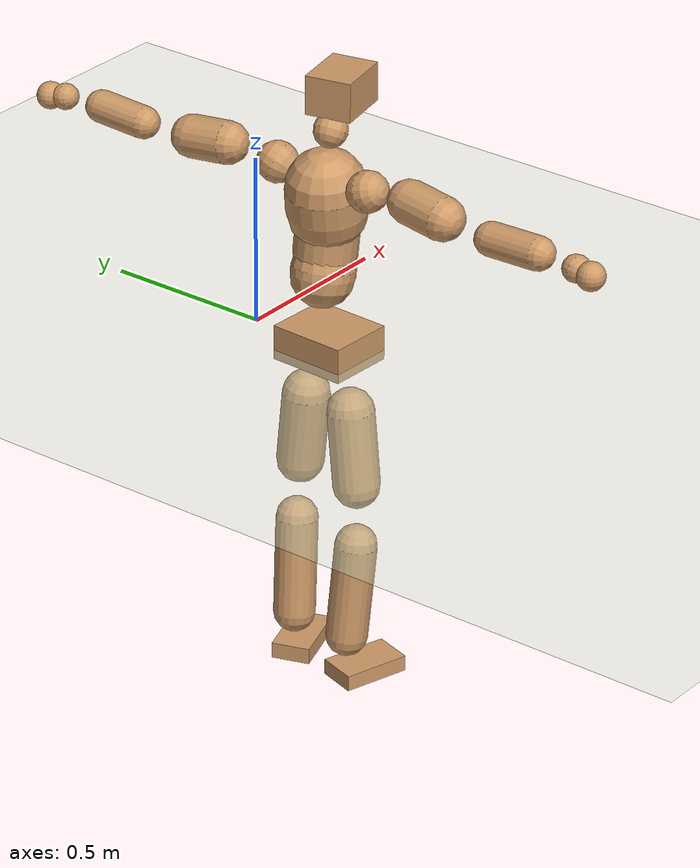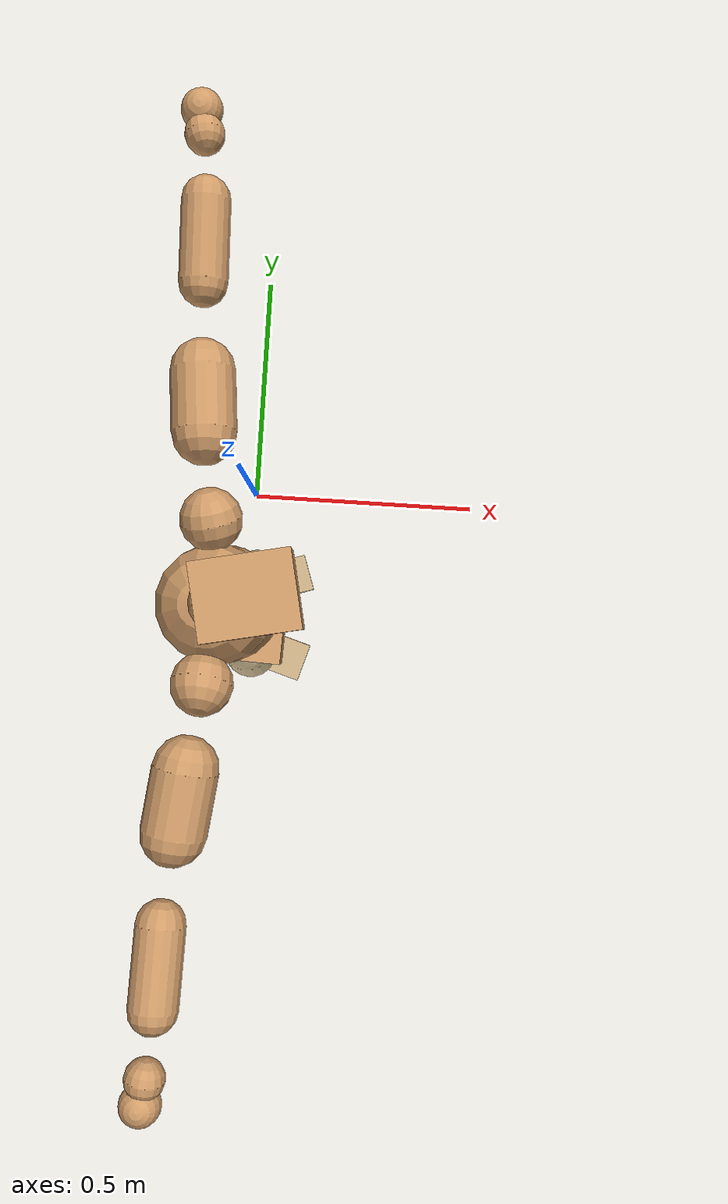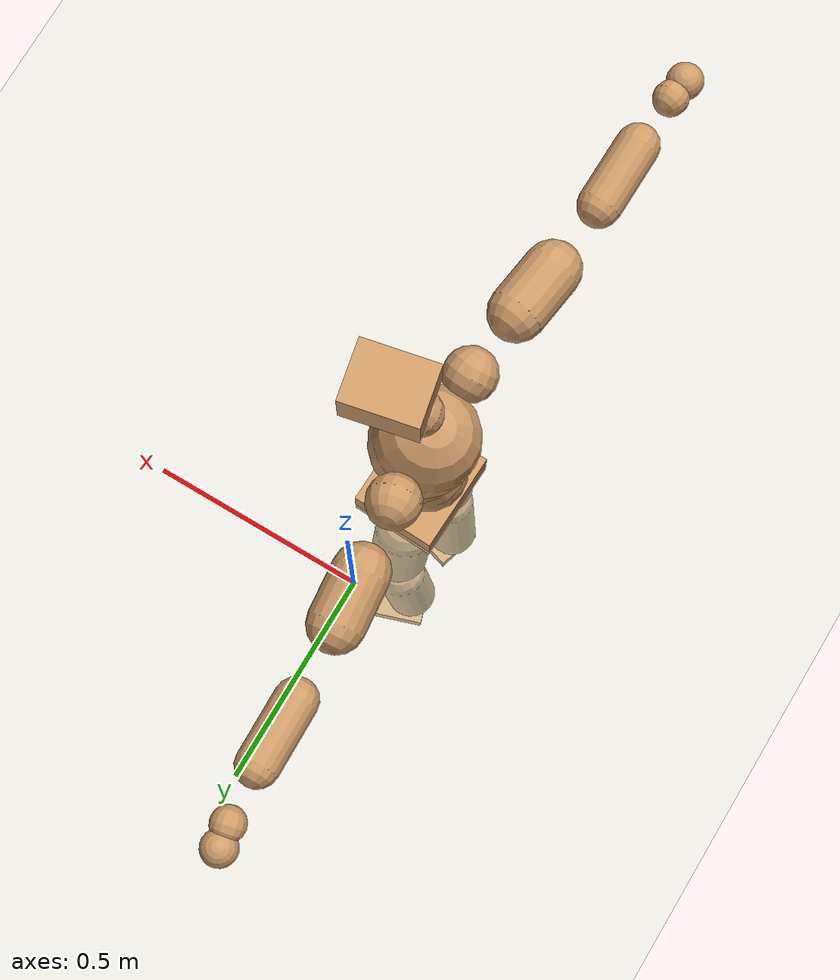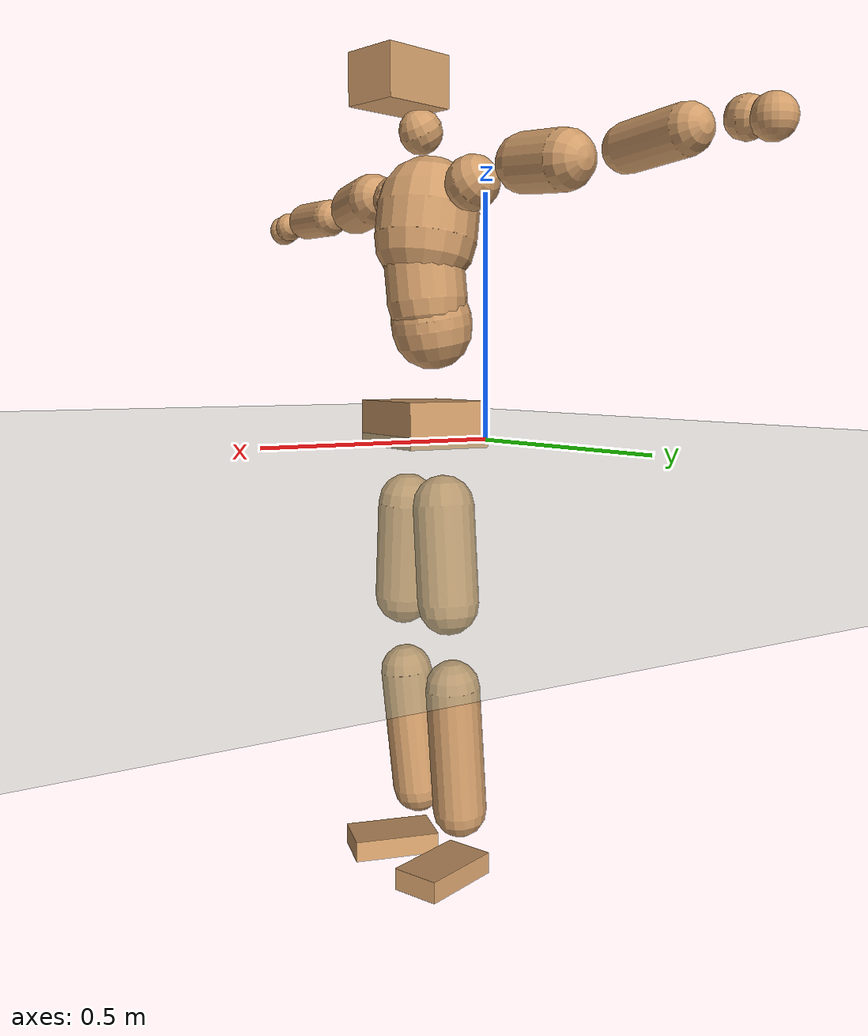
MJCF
<mujoco model="humanoid">
  <compiler coordinate="local" angle="radian"/>
  <default>
    <joint damping="0.0" armature="0.01" stiffness="0.0" limited="true"/>
    <geom conaffinity="1" condim="3" contype="7" margin="0.001" rgba="0.8 0.6 .4 1"/>
  </default>
  <asset>
    <texture type="skybox" builtin="gradient" rgb1=".4 .5 .6" rgb2="0 0 0" width="100" height="100"/>
    <texture builtin="flat" height="1278" mark="cross" markrgb="1 1 1" name="texgeom" random="0.01" rgb1="0.8 0.6 0.4" rgb2="0.8 0.6 0.4" type="cube" width="127"/>
    <texture builtin="checker" height="100" name="texplane" rgb1="0 0 0" rgb2="0.8 0.8 0.8" type="2d" width="100"/>
    <material name="MatPlane" reflectance="0.5" shininess="1" specular="1" texrepeat="60 60" texture="texplane"/>
    <material name="geom" texture="texgeom" texuniform="true"/>
  </asset>
  <worldbody>
    <light cutoff="100" diffuse="1 1 1" dir="-0 0 -1.3" directional="true" exponent="1" pos="0 0 1.3" specular=".1 .1 .1"/>
    <geom conaffinity="1" condim="3" name="floor" pos="0 0 0" rgba="0.8 0.9 0.8 1" size="100 100 .2" type="plane" material="MatPlane"/>
    <body name="Pelvis" pos="-0.0015 -0.269 0.0299">
      <freejoint name="Pelvis"/>
      <geom type="box" contype="1" conaffinity="1" density="5359.375528" pos="-0.0127 0.0005 -0.0088" size="0.0988 0.117 0.0515" quat="0.9998 0.0000 0.0000 -0.0206" name="Pelvis"/>
      <body name="L_Hip" pos="-0.0179 0.0662 -0.0914">
        <joint name="L_Hip_x" type="hinge" pos="0 0 0" axis="1 0 0" stiffness="1600" damping="160" armature="0.02" range="-180.0000 180.0000"/>
        <joint name="L_Hip_y" type="hinge" pos="0 0 0" axis="0 1 0" stiffness="1600" damping="160" armature="0.02" range="-180.0000 180.0000"/>
        <joint name="L_Hip_z" type="hinge" pos="0 0 0" axis="0 0 1" stiffness="1600" damping="160" armature="0.02" range="-180.0000 180.0000"/>
        <geom type="capsule" contype="1" conaffinity="1" density="2040.816327" size="0.0686" fromto="0.0013 0.0106 -0.0980 0.0042 0.0345 -0.3178" name="L_Hip"/>
        <body name="L_Knee" pos="0.0055 0.0451 -0.4158">
          <joint name="L_Knee_x" type="hinge" pos="0 0 0" axis="1 0 0" stiffness="1600" damping="160" armature="0.02" range="-180.0000 180.0000"/>
          <joint name="L_Knee_y" type="hinge" pos="0 0 0" axis="0 1 0" stiffness="1600" damping="160" armature="0.02" range="-180.0000 180.0000"/>
          <joint name="L_Knee_z" type="hinge" pos="0 0 0" axis="0 0 1" stiffness="1600" damping="160" armature="0.02" range="-180.0000 180.0000"/>
          <geom type="capsule" contype="1" conaffinity="1" density="1234.567901" size="0.0613" fromto="-0.0082 -0.0034 -0.0909 -0.0348 -0.0144 -0.3840" name="L_Knee"/>
          <body name="L_Ankle" pos="-0.043 -0.0178 -0.4749">
            <joint name="L_Ankle_x" type="hinge" pos="0 0 0" axis="1 0 0" stiffness="1600" damping="160" armature="0.02" range="-180.0000 180.0000"/>
            <joint name="L_Ankle_y" type="hinge" pos="0 0 0" axis="0 1 0" stiffness="1600" damping="160" armature="0.02" range="-180.0000 180.0000"/>
            <joint name="L_Ankle_z" type="hinge" pos="0 0 0" axis="0 0 1" stiffness="1600" damping="160" armature="0.02" range="-180.0000 180.0000"/>
            <geom type="box" contype="1" conaffinity="1" density="999.999988" pos="0.0667 0.0224 -0.0336" size="0.0983 0.0567 0.0242" quat="0.9869 0.0000 0.0000 0.1615" name="L_Ankle"/>
            <body name="L_Toe" pos="0.1334 0.0449 -0.0672">
              <joint name="L_Toe_x" type="hinge" pos="0 0 0" axis="1 0 0" stiffness="1000" damping="100" armature="0.02" range="-180.0000 180.0000"/>
              <joint name="L_Toe_y" type="hinge" pos="0 0 0" axis="0 1 0" stiffness="1000" damping="100" armature="0.02" range="-180.0000 180.0000"/>
              <joint name="L_Toe_z" type="hinge" pos="0 0 0" axis="0 0 1" stiffness="1000" damping="100" armature="0.02" range="-180.0000 180.0000"/>
              <geom type="box" contype="1" conaffinity="1" density="8368894.317569" pos="0.0000 0.0000 0.0337" size="0.0011 0.0027 0.0012" quat="0.9861 0.0000 0.0000 0.1659" name="L_Toe"/>
            </body>
          </body>
        </body>
      </body>
      <body name="R_Hip" pos="-0.0135 -0.0683 -0.1002">
        <joint name="R_Hip_x" type="hinge" pos="0 0 0" axis="1 0 0" stiffness="1600" damping="160" armature="0.02" range="-180.0000 180.0000"/>
        <joint name="R_Hip_y" type="hinge" pos="0 0 0" axis="0 1 0" stiffness="1600" damping="160" armature="0.02" range="-180.0000 180.0000"/>
        <joint name="R_Hip_z" type="hinge" pos="0 0 0" axis="0 0 1" stiffness="1600" damping="160" armature="0.02" range="-180.0000 180.0000"/>
        <geom type="capsule" contype="1" conaffinity="1" density="2040.816327" size="0.0682" fromto="-0.0021 -0.0111 -0.0975 -0.0070 -0.0366 -0.3204" name="R_Hip"/>
        <body name="R_Knee" pos="-0.0091 -0.0477 -0.4179">
          <joint name="R_Knee_x" type="hinge" pos="0 0 0" axis="1 0 0" stiffness="1600" damping="160" armature="0.02" range="-180.0000 180.0000"/>
          <joint name="R_Knee_y" type="hinge" pos="0 0 0" axis="0 1 0" stiffness="1600" damping="160" armature="0.02" range="-180.0000 180.0000"/>
          <joint name="R_Knee_z" type="hinge" pos="0 0 0" axis="0 0 1" stiffness="1600" damping="160" armature="0.02" range="-180.0000 180.0000"/>
          <geom type="capsule" contype="1" conaffinity="1" density="1234.567901" size="0.061" fromto="-0.0076 0.0042 -0.0906 -0.0318 0.0177 -0.3786" name="R_Knee"/>
          <body name="R_Ankle" pos="-0.0394 0.0219 -0.4692">
            <joint name="R_Ankle_x" type="hinge" pos="0 0 0" axis="1 0 0" stiffness="1600" damping="160" armature="0.02" range="-180.0000 180.0000"/>
            <joint name="R_Ankle_y" type="hinge" pos="0 0 0" axis="0 1 0" stiffness="1600" damping="160" armature="0.02" range="-180.0000 180.0000"/>
            <joint name="R_Ankle_z" type="hinge" pos="0 0 0" axis="0 0 1" stiffness="1600" damping="160" armature="0.02" range="-180.0000 180.0000"/>
            <geom type="box" contype="1" conaffinity="1" density="999.999949" pos="0.0716 -0.0217 -0.0346" size="0.1002 0.059 0.0236" quat="0.9892 0.0000 0.0000 -0.1468" name="R_Ankle"/>
            <body name="R_Toe" pos="0.1433 -0.0435 -0.0692">
              <joint name="R_Toe_x" type="hinge" pos="0 0 0" axis="1 0 0" stiffness="1000" damping="100" armature="0.02" range="-180.0000 180.0000"/>
              <joint name="R_Toe_y" type="hinge" pos="0 0 0" axis="0 1 0" stiffness="1000" damping="100" armature="0.02" range="-180.0000 180.0000"/>
              <joint name="R_Toe_z" type="hinge" pos="0 0 0" axis="0 0 1" stiffness="1000" damping="100" armature="0.02" range="-180.0000 180.0000"/>
              <geom type="box" contype="1" conaffinity="1" density="7975412.095867" pos="0.0000 0.0000 0.0360" size="0.0012 0.0028 0.0012" quat="0.9903 0.0000 0.0000 -0.1386" name="R_Toe"/>
            </body>
          </body>
        </body>
      </body>
      <body name="Torso" pos="-0.0448 0.0053 0.1385">
        <joint name="Torso_x" type="hinge" pos="0 0 0" axis="1 0 0" stiffness="2000" damping="200" armature="0.02" range="-180.0000 180.0000"/>
        <joint name="Torso_y" type="hinge" pos="0 0 0" axis="0 1 0" stiffness="2000" damping="200" armature="0.02" range="-180.0000 180.0000"/>
        <joint name="Torso_z" type="hinge" pos="0 0 0" axis="0 0 1" stiffness="2000" damping="200" armature="0.02" range="-180.0000 180.0000"/>
        <geom type="capsule" contype="1" conaffinity="1" density="2040.816327" size="0.0915" fromto="0.0182 0.0029 0.0896 0.0132 0.0021 0.0651" name="Torso"/>
        <body name="Spine" pos="0.0314 0.005 0.1547">
          <joint name="Spine_x" type="hinge" pos="0 0 0" axis="1 0 0" stiffness="2000" damping="200" armature="0.02" range="-180.0000 180.0000"/>
          <joint name="Spine_y" type="hinge" pos="0 0 0" axis="0 1 0" stiffness="2000" damping="200" armature="0.02" range="-180.0000 180.0000"/>
          <joint name="Spine_z" type="hinge" pos="0 0 0" axis="0 0 1" stiffness="2000" damping="200" armature="0.02" range="-180.0000 180.0000"/>
          <geom type="capsule" contype="1" conaffinity="1" density="2040.816327" size="0.0907" fromto="0.0064 -0.0049 0.0903 -0.0020 0.0015 -0.0278" name="Spine"/>
          <body name="Chest" pos="0.0045 -0.0034 0.0625">
            <joint name="Chest_x" type="hinge" pos="0 0 0" axis="1 0 0" stiffness="2000" damping="200" armature="0.02" range="-180.0000 180.0000"/>
            <joint name="Chest_y" type="hinge" pos="0 0 0" axis="0 1 0" stiffness="2000" damping="200" armature="0.02" range="-180.0000 180.0000"/>
            <joint name="Chest_z" type="hinge" pos="0 0 0" axis="0 0 1" stiffness="2000" damping="200" armature="0.02" range="-180.0000 180.0000"/>
            <geom type="capsule" contype="1" conaffinity="1" density="2040.816327" size="0.1153" fromto="-0.0167 -0.0055 0.1140 -0.0067 -0.0022 0.0458" name="Chest"/>
            <body name="Neck" pos="-0.0287 -0.0124 0.2312">
              <joint name="Neck_x" type="hinge" pos="0 0 0" axis="1 0 0" stiffness="1000" damping="100" armature="0.02" range="-180.0000 180.0000"/>
              <joint name="Neck_y" type="hinge" pos="0 0 0" axis="0 1 0" stiffness="1000" damping="100" armature="0.02" range="-180.0000 180.0000"/>
              <joint name="Neck_z" type="hinge" pos="0 0 0" axis="0 0 1" stiffness="1000" damping="100" armature="0.02" range="-180.0000 180.0000"/>
              <geom type="capsule" contype="1" conaffinity="1" density="1000" size="0.0492" fromto="0.0301 0.0055 0.0480 0.0312 0.0057 0.0497" name="Neck"/>
              <body name="Head" pos="0.0613 0.0113 0.0977">
                <joint name="Head_x" type="hinge" pos="0 0 0" axis="1 0 0" stiffness="1000" damping="100" armature="0.02" range="-180.0000 180.0000"/>
                <joint name="Head_y" type="hinge" pos="0 0 0" axis="0 1 0" stiffness="1000" damping="100" armature="0.02" range="-180.0000 180.0000"/>
                <joint name="Head_z" type="hinge" pos="0 0 0" axis="0 0 1" stiffness="1000" damping="100" armature="0.02" range="-180.0000 180.0000"/>
                <geom type="box" contype="1" conaffinity="1" density="2250.000178" pos="0.0317 0.0066 0.0499" size="0.0857 0.0679 0.0572" quat="0.9947 0.0000 0.0000 0.1031" name="Head"/>
              </body>
            </body>
            <body name="L_Thorax" pos="-0.0185 0.0832 0.1255">
              <joint name="L_Thorax_x" type="hinge" pos="0 0 0" axis="1 0 0" stiffness="1000" damping="100" armature="0.02" range="-180.0000 180.0000"/>
              <joint name="L_Thorax_y" type="hinge" pos="0 0 0" axis="0 1 0" stiffness="1000" damping="100" armature="0.02" range="-180.0000 180.0000"/>
              <joint name="L_Thorax_z" type="hinge" pos="0 0 0" axis="0 0 1" stiffness="1000" damping="100" armature="0.02" range="-180.0000 180.0000"/>
              <geom type="capsule" contype="1" conaffinity="1" density="1000" size="0.0596" fromto="-0.0120 0.0668 0.0266 -0.0124 0.0686 0.0274" name="L_Thorax"/>
              <body name="L_Shoulder" pos="-0.0244 0.1354 0.054">
                <joint name="L_Shoulder_x" type="hinge" pos="0 0 0" axis="1 0 0" stiffness="1000" damping="100" armature="0.02" range="-720.0000 720.0000"/>
                <joint name="L_Shoulder_y" type="hinge" pos="0 0 0" axis="0 1 0" stiffness="1000" damping="100" armature="0.02" range="-720.0000 720.0000"/>
                <joint name="L_Shoulder_z" type="hinge" pos="0 0 0" axis="0 0 1" stiffness="1000" damping="100" armature="0.02" range="-720.0000 720.0000"/>
                <geom type="capsule" contype="1" conaffinity="1" density="1000" size="0.0618" fromto="-0.0087 0.0911 -0.0071 -0.0197 0.2072 -0.0161" name="L_Shoulder"/>
                <body name="L_Elbow" pos="-0.0284 0.2984 -0.0231">
                  <joint name="L_Elbow_x" type="hinge" pos="0 0 0" axis="1 0 0" stiffness="1000" damping="100" armature="0.02" range="-720.0000 720.0000"/>
                  <joint name="L_Elbow_y" type="hinge" pos="0 0 0" axis="0 1 0" stiffness="1000" damping="100" armature="0.02" range="-720.0000 720.0000"/>
                  <joint name="L_Elbow_z" type="hinge" pos="0 0 0" axis="0 0 1" stiffness="1000" damping="100" armature="0.02" range="-720.0000 720.0000"/>
                  <geom type="capsule" contype="1" conaffinity="1" density="1000" size="0.047" fromto="-0.0017 0.0768 0.0046 -0.0049 0.2273 0.0136" name="L_Elbow"/>
                  <body name="L_Wrist" pos="-0.0066 0.3041 0.0182">
                    <joint name="L_Wrist_x" type="hinge" pos="0 0 0" axis="1 0 0" stiffness="600" damping="60" armature="0.02" range="-180.0000 180.0000"/>
                    <joint name="L_Wrist_y" type="hinge" pos="0 0 0" axis="0 1 0" stiffness="600" damping="60" armature="0.02" range="-180.0000 180.0000"/>
                    <joint name="L_Wrist_z" type="hinge" pos="0 0 0" axis="0 0 1" stiffness="600" damping="60" armature="0.02" range="-180.0000 180.0000"/>
                    <geom type="capsule" contype="1" conaffinity="1" density="1000" size="0.0381" fromto="-0.0087 0.0474 -0.0058 -0.0091 0.0494 -0.0061" name="L_Wrist"/>
                    <body name="L_Hand" pos="-0.0178 0.0968 -0.0119">
                      <joint name="L_Hand_x" type="hinge" pos="0 0 0" axis="1 0 0" stiffness="600" damping="60" armature="0.02" range="-180.0000 180.0000"/>
                      <joint name="L_Hand_y" type="hinge" pos="0 0 0" axis="0 1 0" stiffness="600" damping="60" armature="0.02" range="-180.0000 180.0000"/>
                      <joint name="L_Hand_z" type="hinge" pos="0 0 0" axis="0 0 1" stiffness="600" damping="60" armature="0.02" range="-180.0000 180.0000"/>
                      <geom type="sphere" contype="1" conaffinity="1" density="1000" size="0.0398" pos="0.0000 0.0000 0.0000" name="L_Hand"/>
                    </body>
                  </body>
                </body>
              </body>
            </body>
            <body name="R_Thorax" pos="-0.0232 -0.0941 0.1226">
              <joint name="R_Thorax_x" type="hinge" pos="0 0 0" axis="1 0 0" stiffness="1000" damping="100" armature="0.02" range="-180.0000 180.0000"/>
              <joint name="R_Thorax_y" type="hinge" pos="0 0 0" axis="0 1 0" stiffness="1000" damping="100" armature="0.02" range="-180.0000 180.0000"/>
              <joint name="R_Thorax_z" type="hinge" pos="0 0 0" axis="0 0 1" stiffness="1000" damping="100" armature="0.02" range="-180.0000 180.0000"/>
              <geom type="capsule" contype="1" conaffinity="1" density="1000" size="0.0596" fromto="-0.0054 -0.0625 0.0275 -0.0055 -0.0644 0.0283" name="R_Thorax"/>
              <body name="R_Shoulder" pos="-0.0109 -0.1269 0.0558">
                <joint name="R_Shoulder_x" type="hinge" pos="0 0 0" axis="1 0 0" stiffness="1000" damping="100" armature="0.02" range="-720.0000 720.0000"/>
                <joint name="R_Shoulder_y" type="hinge" pos="0 0 0" axis="0 1 0" stiffness="1000" damping="100" armature="0.02" range="-720.0000 720.0000"/>
                <joint name="R_Shoulder_z" type="hinge" pos="0 0 0" axis="0 0 1" stiffness="1000" damping="100" armature="0.02" range="-720.0000 720.0000"/>
                <geom type="capsule" contype="1" conaffinity="1" density="1000" size="0.0629" fromto="-0.0117 -0.0919 -0.0063 -0.0272 -0.2131 -0.0146" name="R_Shoulder"/>
                <body name="R_Elbow" pos="-0.0389 -0.305 -0.0209">
                  <joint name="R_Elbow_x" type="hinge" pos="0 0 0" axis="1 0 0" stiffness="1000" damping="100" armature="0.02" range="-720.0000 720.0000"/>
                  <joint name="R_Elbow_y" type="hinge" pos="0 0 0" axis="0 1 0" stiffness="1000" damping="100" armature="0.02" range="-720.0000 720.0000"/>
                  <joint name="R_Elbow_z" type="hinge" pos="0 0 0" axis="0 0 1" stiffness="1000" damping="100" armature="0.02" range="-720.0000 720.0000"/>
                  <geom type="capsule" contype="1" conaffinity="1" density="1000" size="0.048" fromto="-0.0017 -0.0779 0.0028 -0.0051 -0.2316 0.0083" name="R_Elbow"/>
                  <body name="R_Wrist" pos="-0.0068 -0.3096 0.011">
                    <joint name="R_Wrist_x" type="hinge" pos="0 0 0" axis="1 0 0" stiffness="600" damping="60" armature="0.02" range="-180.0000 180.0000"/>
                    <joint name="R_Wrist_y" type="hinge" pos="0 0 0" axis="0 1 0" stiffness="600" damping="60" armature="0.02" range="-180.0000 180.0000"/>
                    <joint name="R_Wrist_z" type="hinge" pos="0 0 0" axis="0 0 1" stiffness="600" damping="60" armature="0.02" range="-180.0000 180.0000"/>
                    <geom type="capsule" contype="1" conaffinity="1" density="1000" size="0.0391" fromto="-0.0057 -0.0489 -0.0049 -0.0059 -0.0508 -0.0051" name="R_Wrist"/>
                    <body name="R_Hand" pos="-0.0117 -0.0997 -0.01">
                      <joint name="R_Hand_x" type="hinge" pos="0 0 0" axis="1 0 0" stiffness="600" damping="60" armature="0.02" range="-180.0000 180.0000"/>
                      <joint name="R_Hand_y" type="hinge" pos="0 0 0" axis="0 1 0" stiffness="600" damping="60" armature="0.02" range="-180.0000 180.0000"/>
                      <joint name="R_Hand_z" type="hinge" pos="0 0 0" axis="0 0 1" stiffness="600" damping="60" armature="0.02" range="-180.0000 180.0000"/>
                      <geom type="sphere" contype="1" conaffinity="1" density="1000" size="0.0405" pos="0.0000 0.0000 0.0000" name="R_Hand"/>
                    </body>
                  </body>
                </body>
              </body>
            </body>
          </body>
        </body>
      </body>
    </body>
  </worldbody>
  <actuator>
    <motor name="L_Hip_x" joint="L_Hip_x" gear="500"/>
    <motor name="L_Hip_y" joint="L_Hip_y" gear="500"/>
    <motor name="L_Hip_z" joint="L_Hip_z" gear="500"/>
    <motor name="L_Knee_x" joint="L_Knee_x" gear="500"/>
    <motor name="L_Knee_y" joint="L_Knee_y" gear="500"/>
    <motor name="L_Knee_z" joint="L_Knee_z" gear="500"/>
    <motor name="L_Ankle_x" joint="L_Ankle_x" gear="500"/>
    <motor name="L_Ankle_y" joint="L_Ankle_y" gear="500"/>
    <motor name="L_Ankle_z" joint="L_Ankle_z" gear="500"/>
    <motor name="L_Toe_x" joint="L_Toe_x" gear="500"/>
    <motor name="L_Toe_y" joint="L_Toe_y" gear="500"/>
    <motor name="L_Toe_z" joint="L_Toe_z" gear="500"/>
    <motor name="R_Hip_x" joint="R_Hip_x" gear="500"/>
    <motor name="R_Hip_y" joint="R_Hip_y" gear="500"/>
    <motor name="R_Hip_z" joint="R_Hip_z" gear="500"/>
    <motor name="R_Knee_x" joint="R_Knee_x" gear="500"/>
    <motor name="R_Knee_y" joint="R_Knee_y" gear="500"/>
    <motor name="R_Knee_z" joint="R_Knee_z" gear="500"/>
    <motor name="R_Ankle_x" joint="R_Ankle_x" gear="500"/>
    <motor name="R_Ankle_y" joint="R_Ankle_y" gear="500"/>
    <motor name="R_Ankle_z" joint="R_Ankle_z" gear="500"/>
    <motor name="R_Toe_x" joint="R_Toe_x" gear="500"/>
    <motor name="R_Toe_y" joint="R_Toe_y" gear="500"/>
    <motor name="R_Toe_z" joint="R_Toe_z" gear="500"/>
    <motor name="Torso_x" joint="Torso_x" gear="500"/>
    <motor name="Torso_y" joint="Torso_y" gear="500"/>
    <motor name="Torso_z" joint="Torso_z" gear="500"/>
    <motor name="Spine_x" joint="Spine_x" gear="500"/>
    <motor name="Spine_y" joint="Spine_y" gear="500"/>
    <motor name="Spine_z" joint="Spine_z" gear="500"/>
    <motor name="Chest_x" joint="Chest_x" gear="500"/>
    <motor name="Chest_y" joint="Chest_y" gear="500"/>
    <motor name="Chest_z" joint="Chest_z" gear="500"/>
    <motor name="Neck_x" joint="Neck_x" gear="500"/>
    <motor name="Neck_y" joint="Neck_y" gear="500"/>
    <motor name="Neck_z" joint="Neck_z" gear="500"/>
    <motor name="Head_x" joint="Head_x" gear="500"/>
    <motor name="Head_y" joint="Head_y" gear="500"/>
    <motor name="Head_z" joint="Head_z" gear="500"/>
    <motor name="L_Thorax_x" joint="L_Thorax_x" gear="500"/>
    <motor name="L_Thorax_y" joint="L_Thorax_y" gear="500"/>
    <motor name="L_Thorax_z" joint="L_Thorax_z" gear="500"/>
    <motor name="L_Shoulder_x" joint="L_Shoulder_x" gear="500"/>
    <motor name="L_Shoulder_y" joint="L_Shoulder_y" gear="500"/>
    <motor name="L_Shoulder_z" joint="L_Shoulder_z" gear="500"/>
    <motor name="L_Elbow_x" joint="L_Elbow_x" gear="500"/>
    <motor name="L_Elbow_y" joint="L_Elbow_y" gear="500"/>
    <motor name="L_Elbow_z" joint="L_Elbow_z" gear="500"/>
    <motor name="L_Wrist_x" joint="L_Wrist_x" gear="500"/>
    <motor name="L_Wrist_y" joint="L_Wrist_y" gear="500"/>
    <motor name="L_Wrist_z" joint="L_Wrist_z" gear="500"/>
    <motor name="L_Hand_x" joint="L_Hand_x" gear="500"/>
    <motor name="L_Hand_y" joint="L_Hand_y" gear="500"/>
    <motor name="L_Hand_z" joint="L_Hand_z" gear="500"/>
    <motor name="R_Thorax_x" joint="R_Thorax_x" gear="500"/>
    <motor name="R_Thorax_y" joint="R_Thorax_y" gear="500"/>
    <motor name="R_Thorax_z" joint="R_Thorax_z" gear="500"/>
    <motor name="R_Shoulder_x" joint="R_Shoulder_x" gear="500"/>
    <motor name="R_Shoulder_y" joint="R_Shoulder_y" gear="500"/>
    <motor name="R_Shoulder_z" joint="R_Shoulder_z" gear="500"/>
    <motor name="R_Elbow_x" joint="R_Elbow_x" gear="500"/>
    <motor name="R_Elbow_y" joint="R_Elbow_y" gear="500"/>
    <motor name="R_Elbow_z" joint="R_Elbow_z" gear="500"/>
    <motor name="R_Wrist_x" joint="R_Wrist_x" gear="500"/>
    <motor name="R_Wrist_y" joint="R_Wrist_y" gear="500"/>
    <motor name="R_Wrist_z" joint="R_Wrist_z" gear="500"/>
    <motor name="R_Hand_x" joint="R_Hand_x" gear="500"/>
    <motor name="R_Hand_y" joint="R_Hand_y" gear="500"/>
    <motor name="R_Hand_z" joint="R_Hand_z" gear="500"/>
  </actuator>
  <contact>
    <exclude body1="Torso" body2="Chest"/>
    <exclude body1="Head" body2="Chest"/>
    <exclude body1="R_Knee" body2="R_Toe"/>
    <exclude body1="R_Knee" body2="L_Ankle"/>
    <exclude body1="R_Knee" body2="L_Toe"/>
    <exclude body1="L_Knee" body2="L_Toe"/>
    <exclude body1="L_Knee" body2="R_Ankle"/>
    <exclude body1="L_Knee" body2="R_Toe"/>
    <exclude body1="L_Shoulder" body2="Chest"/>
    <exclude body1="R_Shoulder" body2="Chest"/>
  </contact>
  <sensor/>
  <size njmax="700" nconmax="700"/>
</mujoco>
